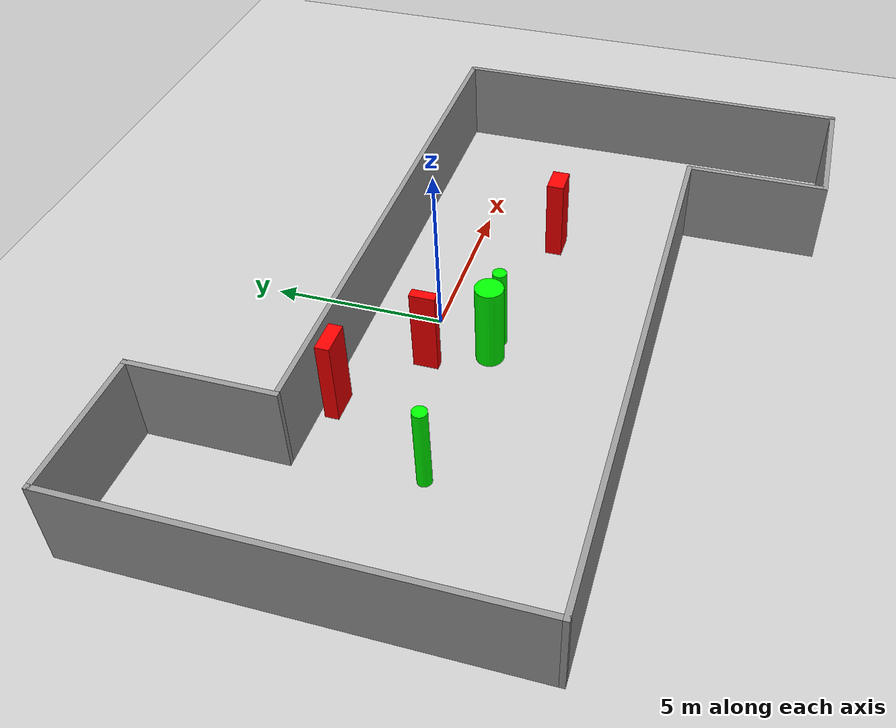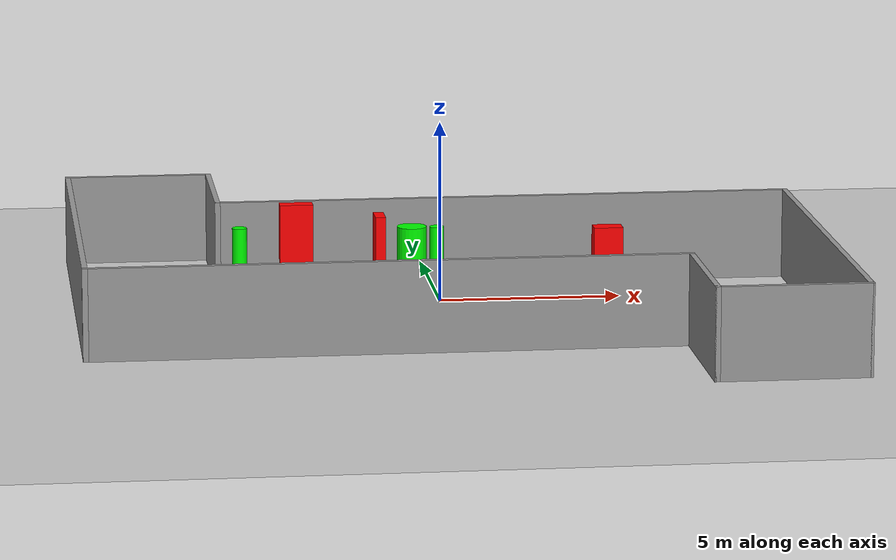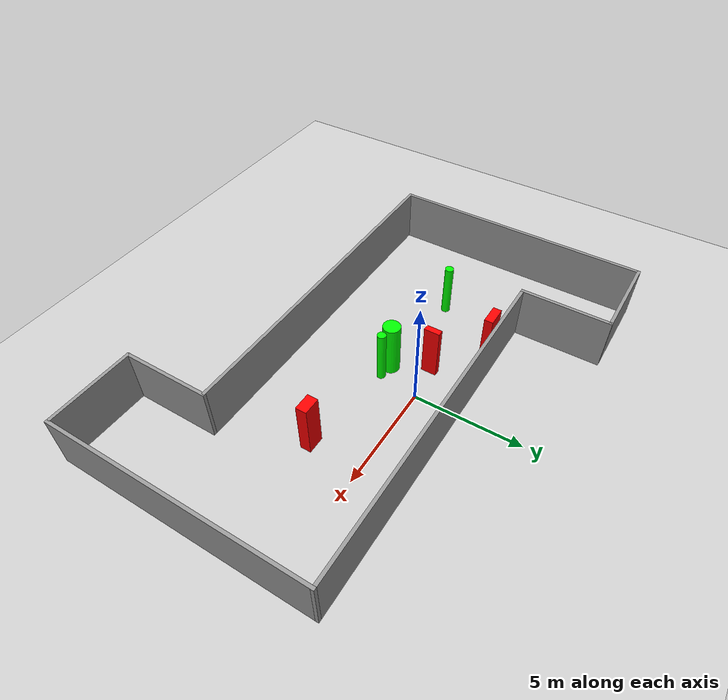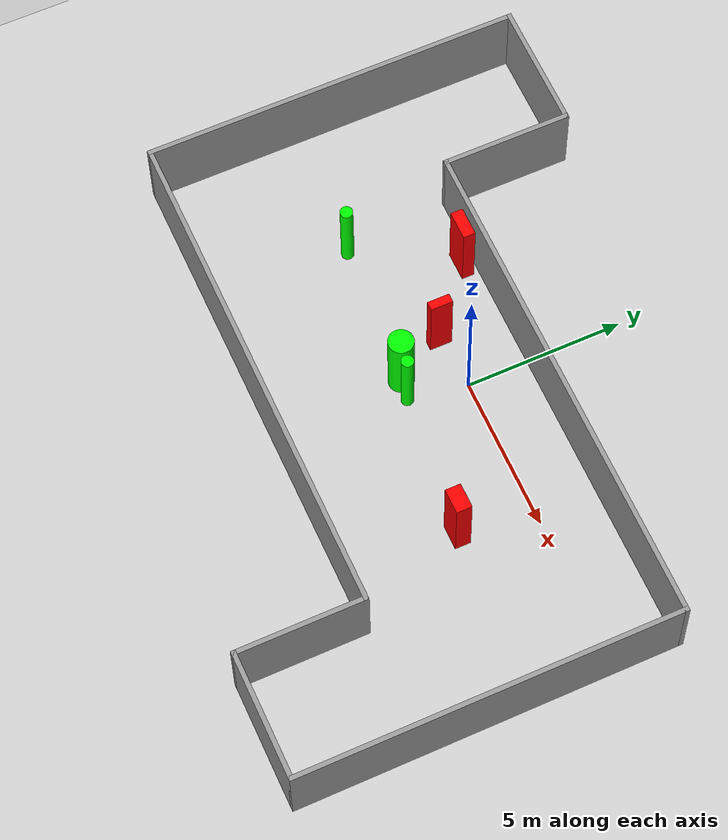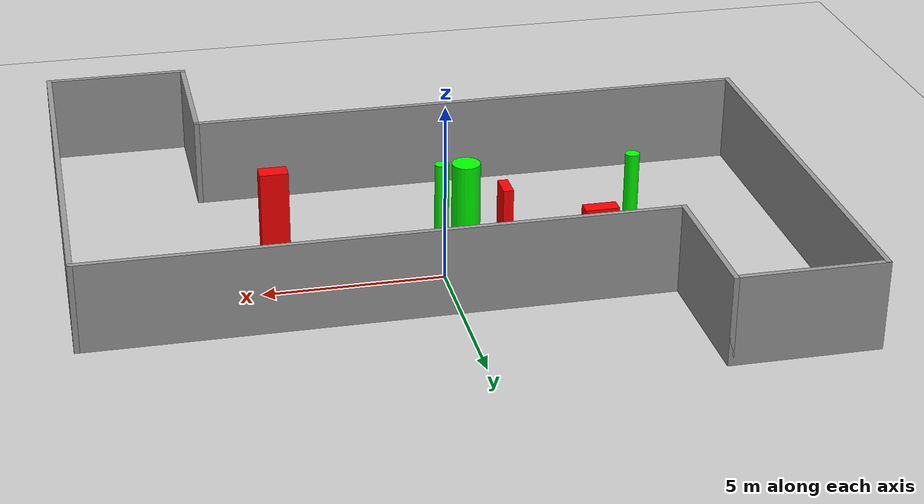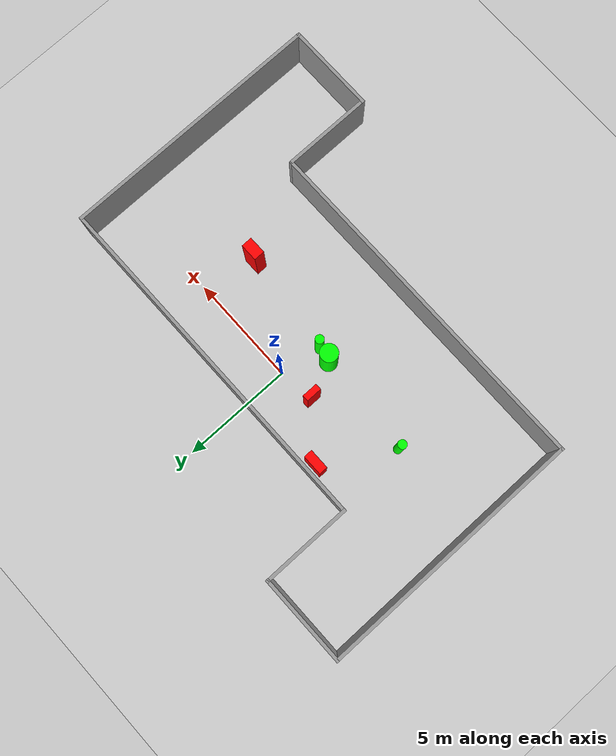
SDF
<sdf version="1.7">
 <world name="default">
  <light name="sun" type="directional">
   <pose>0 0 10 0 -0 0</pose>
   <diffuse>0.8 0.8 0.8 1</diffuse>
   <specular>0.2 0.2 0.2 1</specular>
   <attenuation>
    <range>1000</range>
    <constant>0.9</constant>
    <linear>0.01</linear>
    <quadratic>0.001</quadratic>
   </attenuation>
   <direction>-0.5 0.1 -0.9</direction>
   <spot><inner_angle>0</inner_angle><outer_angle>0</outer_angle><falloff>0</falloff></spot>
  </light>
  <model name="ground_plane">
   <static>1</static>
   <link name="link">
    <collision name="collision">
     <geometry><plane><normal>0 0 1</normal><size>100 100</size></plane></geometry>
     <surface>
      <contact><collide_bitmask>65535</collide_bitmask></contact>
      <friction><ode><mu>100</mu><mu2>50</mu2></ode></friction>
     </surface>
    </collision>
    <visual name="visual">
     <cast_shadows>0</cast_shadows>
     <geometry><plane><normal>0 0 1</normal><size>100 100</size></plane></geometry>
     <material>
      <script><uri>file://media/materials/scripts/gazebo.material</uri><name>Gazebo/Grey</name></script>
     </material>
    </visual>
   </link>
  </model>
  <gravity>0 0 -9.8</gravity>
  <magnetic_field>6e-06 2.3e-05 -4.2e-05</magnetic_field>
  <atmosphere type="adiabatic"/>
  <physics type="ode">
   <max_step_size>0.001</max_step_size>
   <real_time_factor>1</real_time_factor>
   <real_time_update_rate>1000</real_time_update_rate>
  </physics>
  <scene><ambient>0.4 0.4 0.4 1</ambient><background>0.7 0.7 0.7 1</background><shadows>1</shadows></scene>
  <spherical_coordinates>
   <surface_model>EARTH_WGS84</surface_model>
   <latitude_deg>0</latitude_deg>
   <longitude_deg>0</longitude_deg>
   <elevation>0</elevation>
   <heading_deg>0</heading_deg>
  </spherical_coordinates>
  <model name="my_base_walls">
   <link name="Wall_13">
    <collision name="Wall_13_Collision">
     <geometry><box><size>12.15 0.15 2.5</size></box></geometry>
     <pose>0 0 1.25 0 -0 0</pose>
    </collision>
    <visual name="Wall_13_Visual">
     <pose>0 0 1.25 0 -0 0</pose>
     <geometry><box><size>12.15 0.15 2.5</size></box></geometry>
     <material>
      <script><uri>file://media/materials/scripts/gazebo.material</uri><name>Gazebo/Grey</name></script>
      <ambient>1 1 1 1</ambient>
     </material>
     <meta><layer>0</layer></meta>
    </visual>
    <pose>10 -2 0 0 -0 1.5708</pose>
   </link>
   <link name="Wall_15">
    <collision name="Wall_15_Collision">
     <geometry><box><size>16.15 0.15 2.5</size></box></geometry>
     <pose>0 0 1.25 0 -0 0</pose>
    </collision>
    <visual name="Wall_15_Visual">
     <pose>0 0 1.25 0 -0 0</pose>
     <geometry><box><size>16.15 0.15 2.5</size></box></geometry>
     <material>
      <script><uri>file://media/materials/scripts/gazebo.material</uri><name>Gazebo/Grey</name></script>
      <ambient>1 1 1 1</ambient>
     </material>
     <meta><layer>0</layer></meta>
    </visual>
    <pose>2 4 0 0 -0 3.14159</pose>
   </link>
   <link name="Wall_17">
    <collision name="Wall_17_Collision">
     <geometry><box><size>4.15 0.15 2.5</size></box></geometry>
     <pose>0 0 1.25 0 -0 0</pose>
    </collision>
    <visual name="Wall_17_Visual">
     <pose>0 0 1.25 0 -0 0</pose>
     <geometry><box><size>4.15 0.15 2.5</size></box></geometry>
     <material>
      <script><uri>file://media/materials/scripts/gazebo.material</uri><name>Gazebo/Grey</name></script>
      <ambient>1 1 1 1</ambient>
     </material>
     <meta><layer>0</layer></meta>
    </visual>
    <pose>6 -6 0 0 -0 -1.5708</pose>
   </link>
   <link name="Wall_19">
    <collision name="Wall_19_Collision">
     <geometry><box><size>12.15 0.15 2.5</size></box></geometry>
     <pose>0 0 1.25 0 -0 0</pose>
    </collision>
    <visual name="Wall_19_Visual">
     <pose>0 0 1.25 0 -0 0</pose>
     <geometry><box><size>12.15 0.15 2.5</size></box></geometry>
     <material>
      <script><uri>file://media/materials/scripts/gazebo.material</uri><name>Gazebo/Grey</name></script>
      <ambient>1 1 1 1</ambient>
     </material>
     <meta><layer>0</layer></meta>
    </visual>
    <pose>-10 2 0 0 -0 1.5708</pose>
   </link>
   <link name="Wall_21">
    <collision name="Wall_21_Collision">
     <geometry><box><size>4.15 0.15 2.5</size></box></geometry>
     <pose>0 0 1.25 0 -0 0</pose>
    </collision>
    <visual name="Wall_21_Visual">
     <pose>0 0 1.25 0 -0 0</pose>
     <geometry><box><size>4.15 0.15 2.5</size></box></geometry>
     <material>
      <script><uri>file://media/materials/scripts/gazebo.material</uri><name>Gazebo/Grey</name></script>
      <ambient>1 1 1 1</ambient>
     </material>
     <meta><layer>0</layer></meta>
    </visual>
    <pose>-8 8 0 0 -0 0</pose>
   </link>
   <link name="Wall_23">
    <collision name="Wall_23_Collision">
     <geometry><box><size>4.15 0.15 2.5</size></box></geometry>
     <pose>0 0 1.25 0 -0 0</pose>
    </collision>
    <visual name="Wall_23_Visual">
     <pose>0 0 1.25 0 -0 0</pose>
     <geometry><box><size>4.15 0.15 2.5</size></box></geometry>
     <material>
      <script><uri>file://media/materials/scripts/gazebo.material</uri><name>Gazebo/Grey</name></script>
      <ambient>1 1 1 1</ambient>
     </material>
     <meta><layer>0</layer></meta>
    </visual>
    <pose>-6 6 0 0 -0 -1.5708</pose>
   </link>
   <link name="Wall_25">
    <collision name="Wall_25_Collision">
     <geometry><box><size>4.15 0.15 2.5</size></box></geometry>
     <pose>0 0 1.25 0 -0 0</pose>
    </collision>
    <visual name="Wall_25_Visual">
     <pose>0 0 1.25 0 -0 0</pose>
     <geometry><box><size>4.15 0.15 2.5</size></box></geometry>
     <material>
      <script><uri>file://media/materials/scripts/gazebo.material</uri><name>Gazebo/Grey</name></script>
      <ambient>1 1 1 1</ambient>
     </material>
     <meta><layer>0</layer></meta>
    </visual>
    <pose>8 -8 0 0 -0 0</pose>
   </link>
   <link name="Wall_9">
    <collision name="Wall_9_Collision">
     <geometry><box><size>16.15 0.15 2.5</size></box></geometry>
     <pose>0 0 1.25 0 -0 0</pose>
    </collision>
    <visual name="Wall_9_Visual">
     <pose>0 0 1.25 0 -0 0</pose>
     <geometry><box><size>16.15 0.15 2.5</size></box></geometry>
     <material>
      <script><uri>file://media/materials/scripts/gazebo.material</uri><name>Gazebo/Grey</name></script>
      <ambient>1 1 1 1</ambient>
     </material>
     <meta><layer>0</layer></meta>
    </visual>
    <pose>-2 -4 0 0 -0 3.14159</pose>
   </link>
   <static>1</static>
   <pose>-0 -2 0 0 -0 0</pose>
  </model>
  <model name="cylinder1">
   <static>1</static>
   <link name="link">
    <inertial>
     <mass>1</mass>
     <inertia><ixx>0.5</ixx><ixy>0</ixy><ixz>0</ixz><iyy>0.5</iyy><iyz>0</iyz><izz>1</izz></inertia>
    </inertial>
    <collision name="collision">
     <geometry><cylinder><radius>0.19776140425896802</radius><length>2.5</length></cylinder></geometry>
    </collision>
    <visual name="visual">
     <geometry><cylinder><radius>0.19776140425896802</radius><length>2.5</length></cylinder></geometry>
     <material>
      <ambient>0 1 0 1</ambient>
      <diffuse>0 1 0 1</diffuse>
      <specular>0.1 0.1 0.1 1</specular>
      <emissive>0 0 0 0</emissive>
     </material>
    </visual>
   </link>
   <pose>-0.30826914806691263 -1.8639718883329914 1.25 0 0 0</pose>
  </model>
  <model name="cylinder2">
   <static>1</static>
   <link name="link">
    <inertial>
     <mass>1</mass>
     <inertia><ixx>0.5</ixx><ixy>0</ixy><ixz>0</ixz><iyy>0.5</iyy><iyz>0</iyz><izz>1</izz></inertia>
    </inertial>
    <collision name="collision">
     <geometry><cylinder><radius>0.20026983358179645</radius><length>2.5</length></cylinder></geometry>
    </collision>
    <visual name="visual">
     <geometry><cylinder><radius>0.20026983358179645</radius><length>2.5</length></cylinder></geometry>
     <material>
      <ambient>0 1 0 1</ambient>
      <diffuse>0 1 0 1</diffuse>
      <specular>0.1 0.1 0.1 1</specular>
      <emissive>0 0 0 0</emissive>
     </material>
    </visual>
   </link>
   <pose>-5.635140919599005 -1.4536838837137642 1.25 0 0 0</pose>
  </model>
  <model name="cylinder3">
   <static>1</static>
   <link name="link">
    <inertial>
     <mass>1</mass>
     <inertia><ixx>0.5</ixx><ixy>0</ixy><ixz>0</ixz><iyy>0.5</iyy><iyz>0</iyz><izz>1</izz></inertia>
    </inertial>
    <collision name="collision">
     <geometry><cylinder><radius>0.39838675885356545</radius><length>2.5</length></cylinder></geometry>
    </collision>
    <visual name="visual">
     <geometry><cylinder><radius>0.39838675885356545</radius><length>2.5</length></cylinder></geometry>
     <material>
      <ambient>0 1 0 1</ambient>
      <diffuse>0 1 0 1</diffuse>
      <specular>0.1 0.1 0.1 1</specular>
      <emissive>0 0 0 0</emissive>
     </material>
    </visual>
   </link>
   <pose>-0.9766586758711329 -1.7692138193011768 1.25 0 0 0</pose>
  </model>
  <model name="box1">
   <static>1</static>
   <link name="link">
    <inertial>
     <mass>1</mass>
     <inertia><ixx>0.083</ixx><ixy>0</ixy><ixz>0</ixz><iyy>0.083</iyy><iyz>0</iyz><izz>0.083</izz></inertia>
    </inertial>
    <collision name="collision">
     <geometry><box><size>0.7886817586905681 0.4919151328546751 2.5</size></box></geometry>
    </collision>
    <visual name="visual">
     <geometry><box><size>0.7886817586905681 0.4919151328546751 2.5</size></box></geometry>
     <material>
      <ambient>1 0 0 1</ambient>
      <diffuse>1 0 0 1</diffuse>
      <specular>0.1 0.1 0.1 1</specular>
      <emissive>0 0 0 0</emissive>
     </material>
    </visual>
    <sensor name="my_contact" type="contact">
     <contact><collision>box_collision</collision><topic>__default_topic__</topic></contact>
    </sensor>
   </link>
   <pose>4.299013376736287 -2.359245959488942 1.25 0 0 0</pose>
  </model>
  <model name="box2">
   <static>1</static>
   <link name="link">
    <inertial>
     <mass>1</mass>
     <inertia><ixx>0.083</ixx><ixy>0</ixy><ixz>0</ixz><iyy>0.083</iyy><iyz>0</iyz><izz>0.083</izz></inertia>
    </inertial>
    <collision name="collision">
     <geometry><box><size>0.917930649033164 0.39079315501271805 2.5</size></box></geometry>
    </collision>
    <visual name="visual">
     <geometry><box><size>0.917930649033164 0.39079315501271805 2.5</size></box></geometry>
     <material>
      <ambient>1 0 0 1</ambient>
      <diffuse>1 0 0 1</diffuse>
      <specular>0.1 0.1 0.1 1</specular>
      <emissive>0 0 0 0</emissive>
     </material>
    </visual>
    <sensor name="my_contact" type="contact">
     <contact><collision>box_collision</collision><topic>__default_topic__</topic></contact>
    </sensor>
   </link>
   <pose>-3.846865305853605 1.5568927331881888 1.25 0 0 0</pose>
  </model>
  <model name="box3">
   <static>1</static>
   <link name="link">
    <inertial>
     <mass>1</mass>
     <inertia><ixx>0.083</ixx><ixy>0</ixy><ixz>0</ixz><iyy>0.083</iyy><iyz>0</iyz><izz>0.083</izz></inertia>
    </inertial>
    <collision name="collision">
     <geometry><box><size>0.2810958700046037 0.7071430303352774 2.5</size></box></geometry>
    </collision>
    <visual name="visual">
     <geometry><box><size>0.2810958700046037 0.7071430303352774 2.5</size></box></geometry>
     <material>
      <ambient>1 0 0 1</ambient>
      <diffuse>1 0 0 1</diffuse>
      <specular>0.1 0.1 0.1 1</specular>
      <emissive>0 0 0 0</emissive>
     </material>
    </visual>
    <sensor name="my_contact" type="contact">
     <contact><collision>box_collision</collision><topic>__default_topic__</topic></contact>
    </sensor>
   </link>
   <pose>-1.6969759002267812 -0.18420661914685788 1.25 0 0 0</pose>
  </model>
 </world>
</sdf>
